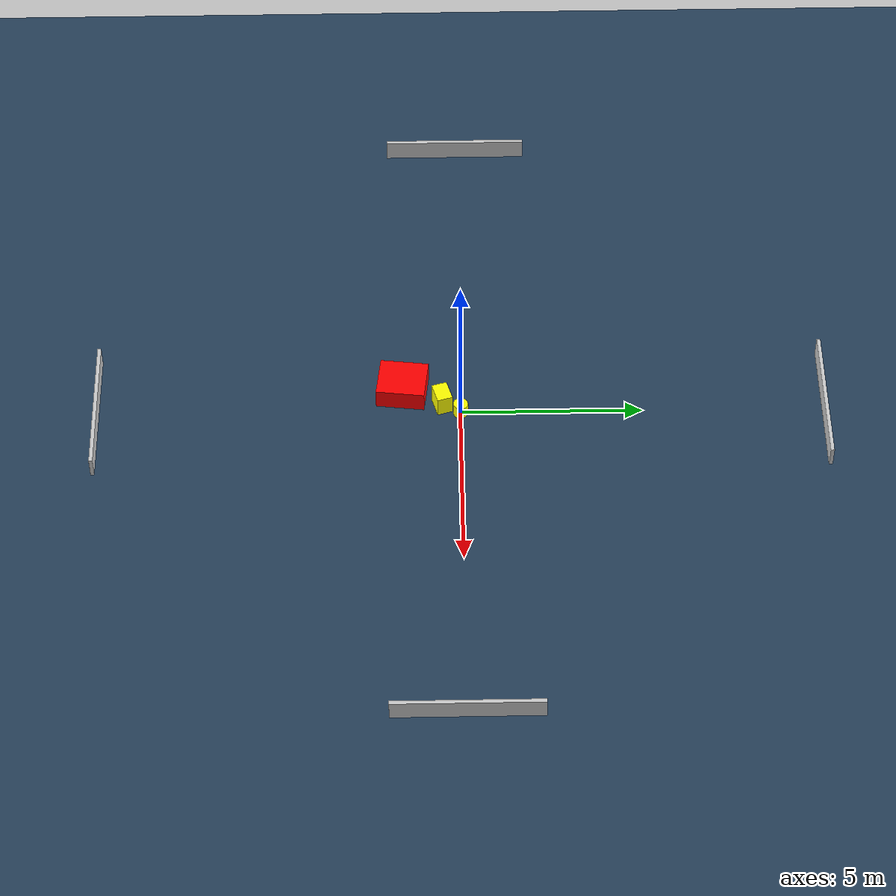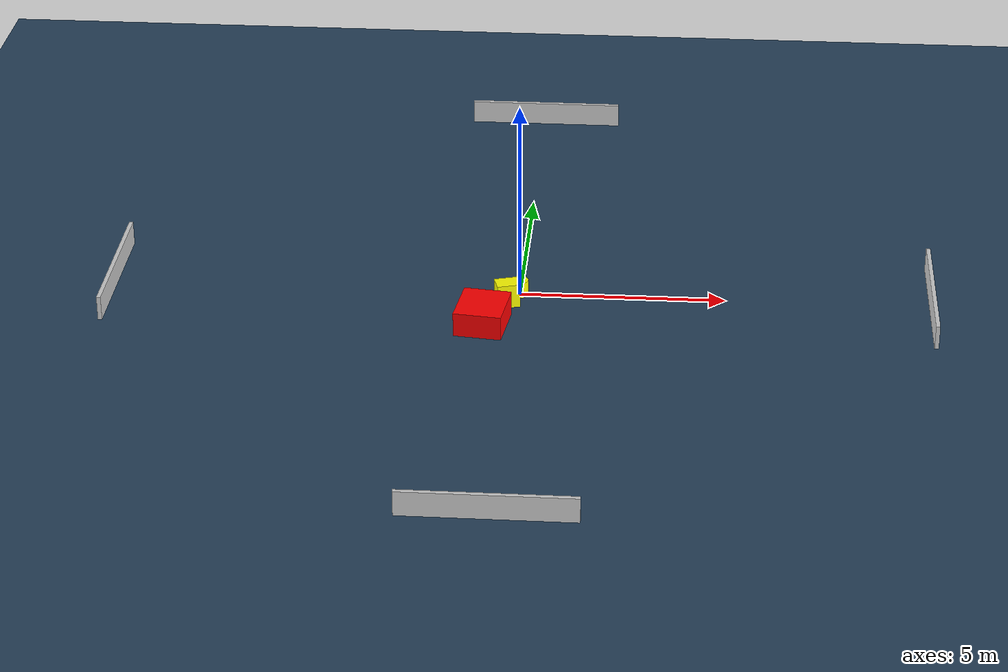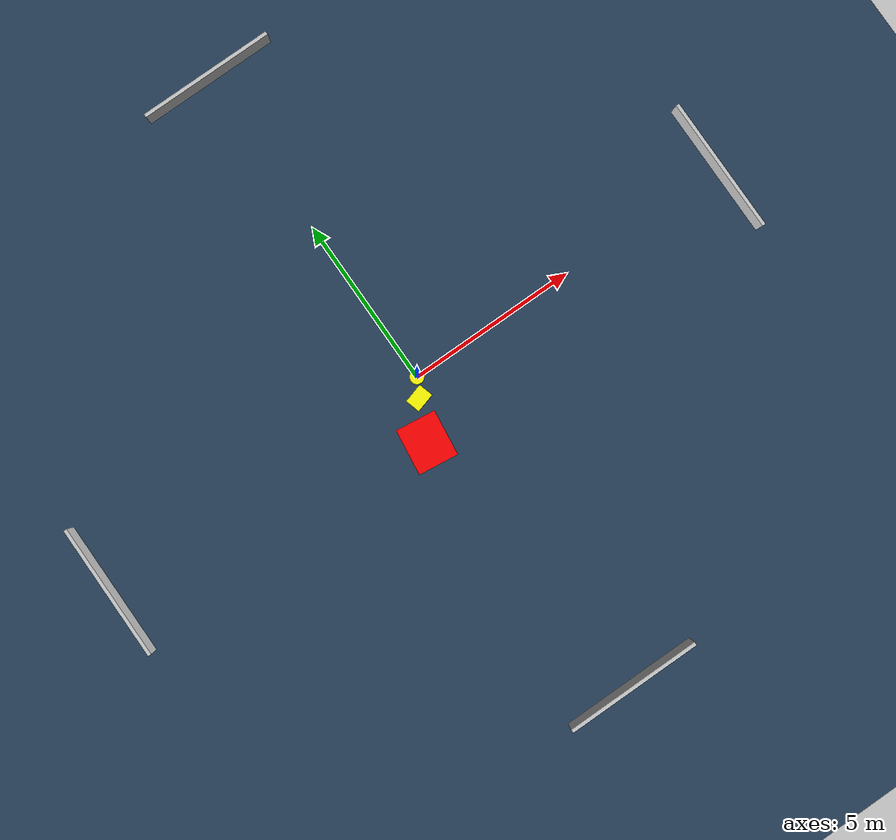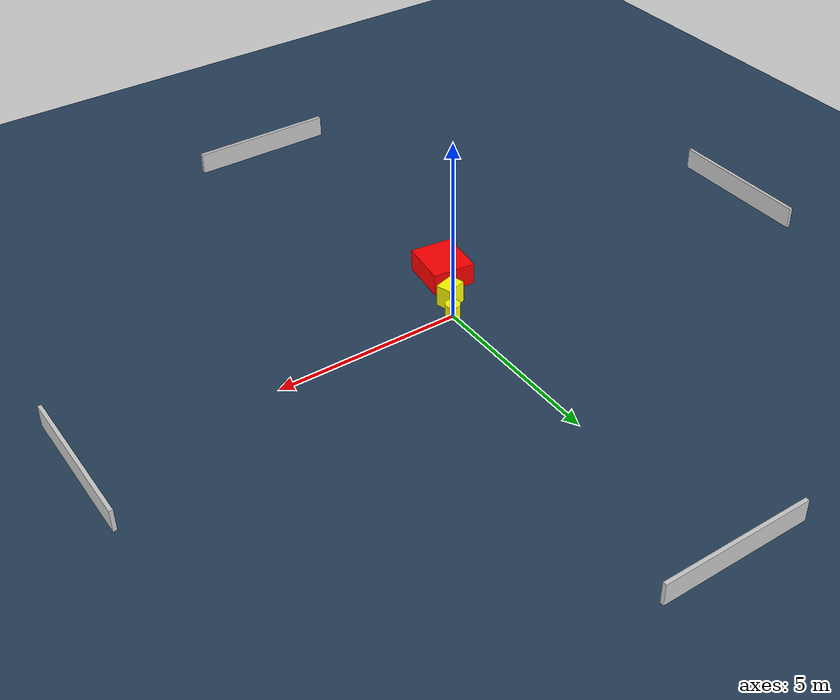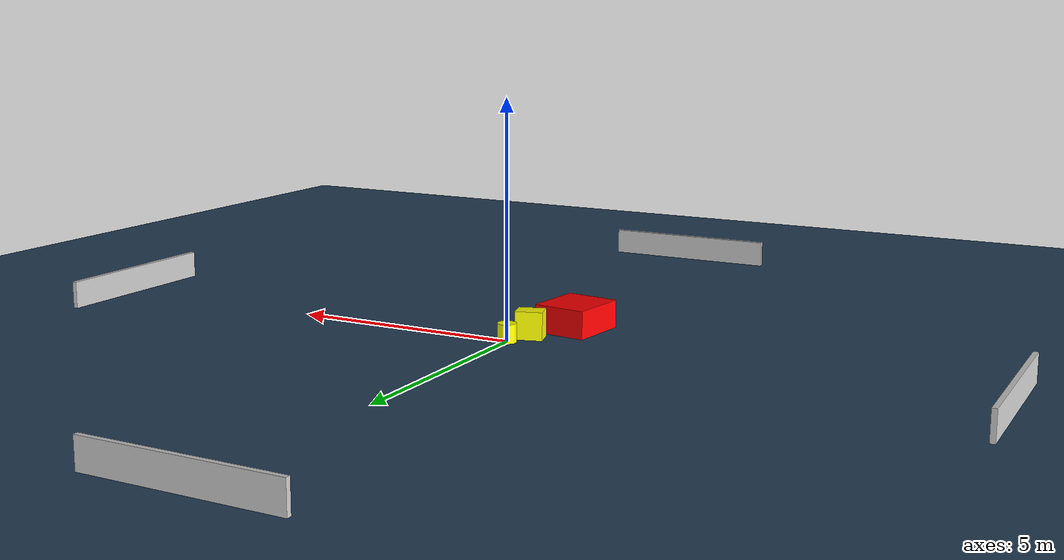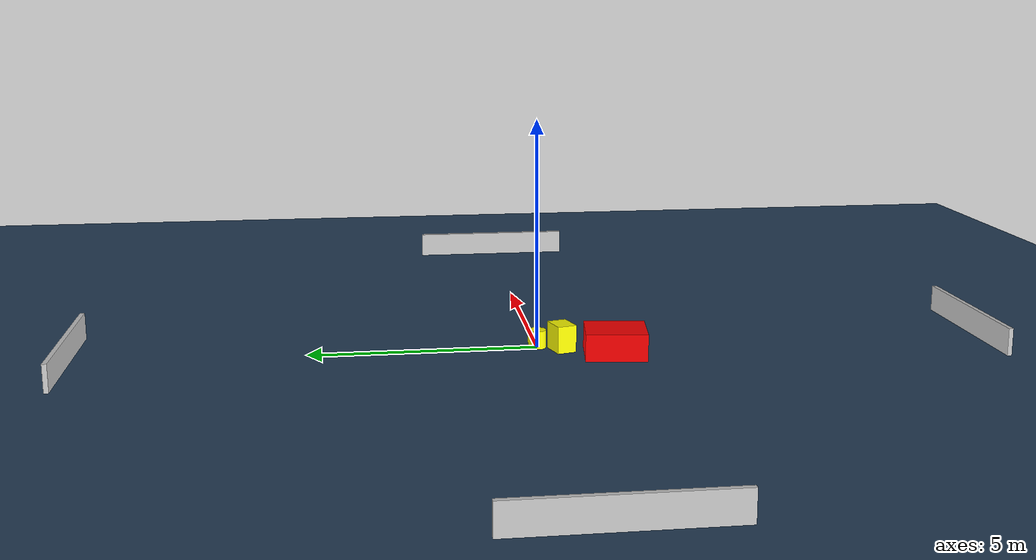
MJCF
<?xml version="1.0" ?>
<mujoco model="generated_environment">
  <option timestep="0.01" integrator="RK4" cone="elliptic"/>
  <default>
    <geom density="1"/>
  </default>
  <asset>
    <texture builtin="gradient" height="3072" name="skybox" rgb1="0.3 0.5 0.7" rgb2="0 0 0" type="skybox" width="512"/>
    <texture builtin="checker" height="300" name="groundplane" rgb1="0.2 0.3 0.4" rgb2="0.1 0.2 0.3" type="2d" width="300"/>
    <material name="groundplane" reflectance="0.2" texrepeat="5 5" texture="groundplane"/>
  </asset>
  <worldbody>
    <light dir="0 0 -1" directional="true" pos="0 0 1.5"/>
    <geom condim="3" friction="0.5 0.005 0.001" material="groundplane" name="floor" pos="0 0 0" size="0 0 0.05" type="plane"/>
    <body name="walls">
      <geom name="wall_1" condim="4" pos="-10.0 0.0 0.3" rgba="0.800000011920929 0.800000011920929 0.800000011920929 1.0" size="0.05 2.0 0.3" type="box"/>
      <geom name="wall_2" condim="4" pos="10.0 0.0 0.3" rgba="0.800000011920929 0.800000011920929 0.800000011920929 1.0" size="0.05 2.0 0.3" type="box"/>
      <geom name="wall_3" condim="4" pos="0.0 -10.0 0.3" rgba="0.800000011920929 0.800000011920929 0.800000011920929 1.0" size="2.0 0.05 0.3" type="box"/>
      <geom name="wall_4" condim="4" pos="0.0 10.0 0.3" rgba="0.800000011920929 0.800000011920929 0.800000011920929 1.0" size="2.0 0.05 0.3" type="box"/>
    </body>
    <body name="robot">
      <joint name="joint_x" type="slide" pos="0 0 0" axis="1 0 0"/>
      <joint name="joint_y" type="slide" pos="0 0 0" axis="0 1 0"/>
      <geom name="robot" type="cylinder" pos="0.0 0.0 0.2" size="0.2 0.2 0.0" mass="5.0" friction="1.0 0.005 0.0001" condim="4" rgba="1.0 1.0 0.0 1.0"/>
    </body>
    <body name="obstacle_1_movable">
      <geom name="obstacle_1_movable" condim="4" pos="-0.2794243766574994 -0.5082462982273787 0.3" euler="0 0 286.1030008511229" friction="0.0 0.005 0.001" rgba="1.0 1.0 0.0 1.0" size="0.2136811058983097 0.2851887941754011 0.3" type="box" mass="0.1"/>
      <joint type="free"/>
    </body>
    <body name="obstacle_2_static">
      <geom name="obstacle_2_static" condim="4" pos="-0.7917348047678824 -1.5963117231294917 0.3" euler="0 0 83.0221294836311" friction="0.0 0.005 0.001" rgba="1.0 0.0 0.0 1.0" size="0.6647926578505807 0.5802054938899234 0.3" type="box"/>
    </body>
  </worldbody>
  <actuator>
    <motor name="actuator_x" joint="joint_x" gear="1" ctrlrange="-1 1"/>
    <motor name="actuator_y" joint="joint_y" gear="1" ctrlrange="-1 1"/>
  </actuator>
</mujoco>
